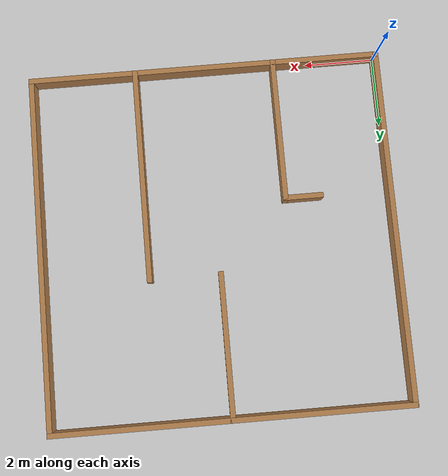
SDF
<sdf version="1.7">
 <world name="default">
  <light name="sun" type="directional">
   <pose>0 0 10 0 -0 0</pose>
   <diffuse>0.8 0.8 0.8 1</diffuse>
   <specular>0.2 0.2 0.2 1</specular>
   <attenuation>
    <range>1000</range>
    <constant>0.9</constant>
    <linear>0.01</linear>
    <quadratic>0.001</quadratic>
   </attenuation>
   <direction>-0.5 0.1 -0.9</direction>
   <spot><inner_angle>0</inner_angle><outer_angle>0</outer_angle><falloff>0</falloff></spot>
  </light>
  <model name="ground_plane">
   <static>1</static>
   <link name="link">
    <collision name="collision">
     <geometry><plane><normal>0 0 1</normal><size>100 100</size></plane></geometry>
     <surface>
      <contact><collide_bitmask>65535</collide_bitmask></contact>
      <friction><ode><mu>100</mu><mu2>50</mu2></ode></friction>
     </surface>
    </collision>
    <visual name="visual">
     <cast_shadows>0</cast_shadows>
     <geometry><plane><normal>0 0 1</normal><size>100 100</size></plane></geometry>
     <material>
      <script><uri>file://media/materials/scripts/gazebo.material</uri><name>Gazebo/Grey</name></script>
     </material>
    </visual>
   </link>
  </model>
  <gravity>0 0 -9.8</gravity>
  <magnetic_field>6e-06 2.3e-05 -4.2e-05</magnetic_field>
  <atmosphere type="adiabatic"/>
  <physics type="ode">
   <max_step_size>0.001</max_step_size>
   <real_time_factor>1</real_time_factor>
   <real_time_update_rate>1000</real_time_update_rate>
  </physics>
  <scene><ambient>0.4 0.4 0.4 1</ambient><background>0.7 0.7 0.7 1</background><shadows>1</shadows></scene>
  <spherical_coordinates>
   <surface_model>EARTH_WGS84</surface_model>
   <latitude_deg>0</latitude_deg>
   <longitude_deg>0</longitude_deg>
   <elevation>0</elevation>
   <heading_deg>0</heading_deg>
  </spherical_coordinates>
  <model name="miletsone3_map">
   <pose>5 5 0 0 -0 0</pose>
   <link name="Wall_0">
    <collision name="Wall_0_Collision">
     <geometry><box><size>10.15 0.15 0.5</size></box></geometry>
     <pose>0 0 0.25 0 -0 0</pose>
    </collision>
    <visual name="Wall_0_Visual">
     <pose>0 0 0.25 0 -0 0</pose>
     <geometry><box><size>10.15 0.15 0.5</size></box></geometry>
     <material>
      <script><uri>file://media/materials/scripts/gazebo.material</uri><name>Gazebo/Wood</name></script>
      <ambient>1 1 1 1</ambient>
     </material>
     <meta><layer>0</layer></meta>
    </visual>
    <pose>-0 -5 0 0 -0 0</pose>
   </link>
   <link name="Wall_11">
    <collision name="Wall_11_Collision">
     <geometry><box><size>10.15 0.15 0.5</size></box></geometry>
     <pose>0 0 0.25 0 -0 0</pose>
    </collision>
    <visual name="Wall_11_Visual">
     <pose>0 0 0.25 0 -0 0</pose>
     <geometry><box><size>10.15 0.15 0.5</size></box></geometry>
     <material>
      <script><uri>file://media/materials/scripts/gazebo.material</uri><name>Gazebo/Wood</name></script>
      <ambient>1 1 1 1</ambient>
     </material>
     <meta><layer>0</layer></meta>
    </visual>
    <pose>-0 5 0 0 -0 0</pose>
   </link>
   <link name="Wall_13">
    <collision name="Wall_13_Collision">
     <geometry><box><size>4.15 0.15 0.5</size></box></geometry>
     <pose>0 0 0.25 0 -0 0</pose>
    </collision>
    <visual name="Wall_13_Visual">
     <pose>0 0 0.25 0 -0 0</pose>
     <geometry><box><size>4.15 0.15 0.5</size></box></geometry>
     <material>
      <script><uri>file://media/materials/scripts/gazebo.material</uri><name>Gazebo/Wood</name></script>
      <ambient>1 1 1 1</ambient>
     </material>
     <meta><layer>0</layer></meta>
    </visual>
    <pose>-2 -3 0 0 -0 1.5708</pose>
   </link>
   <link name="Wall_17">
    <collision name="Wall_17_Collision">
     <geometry><box><size>4.15 0.15 0.5</size></box></geometry>
     <pose>0 0 0.25 0 -0 0</pose>
    </collision>
    <visual name="Wall_17_Visual">
     <pose>0 0 0.25 0 -0 0</pose>
     <geometry><box><size>4.15 0.15 0.5</size></box></geometry>
     <material>
      <script><uri>file://media/materials/scripts/gazebo.material</uri><name>Gazebo/Wood</name></script>
      <ambient>1 1 1 1</ambient>
     </material>
     <meta><layer>0</layer></meta>
    </visual>
    <pose>-0 3 0 0 -0 -1.5708</pose>
   </link>
   <link name="Wall_19">
    <collision name="Wall_19_Collision">
     <geometry><box><size>1.15 0.15 0.5</size></box></geometry>
     <pose>0 0 0.25 0 -0 0</pose>
    </collision>
    <visual name="Wall_19_Visual">
     <pose>0 0 0.25 0 -0 0</pose>
     <geometry><box><size>1.15 0.15 0.5</size></box></geometry>
     <material>
      <script><uri>file://media/materials/scripts/gazebo.material</uri><name>Gazebo/Wood</name></script>
      <ambient>1 1 1 1</ambient>
     </material>
     <meta><layer>0</layer></meta>
    </visual>
    <pose>-2.5 -1 0 0 -0 3.14159</pose>
   </link>
   <link name="Wall_2">
    <collision name="Wall_2_Collision">
     <geometry><box><size>10.15 0.15 0.5</size></box></geometry>
     <pose>0 0 0.25 0 -0 0</pose>
    </collision>
    <visual name="Wall_2_Visual">
     <pose>0 0 0.25 0 -0 0</pose>
     <geometry><box><size>10.15 0.15 0.5</size></box></geometry>
     <material>
      <script><uri>file://media/materials/scripts/gazebo.material</uri><name>Gazebo/Wood</name></script>
      <ambient>1 1 1 1</ambient>
     </material>
     <meta><layer>0</layer></meta>
    </visual>
    <pose>-5 -0 0 0 -0 1.5708</pose>
   </link>
   <link name="Wall_21">
    <collision name="Wall_21_Collision">
     <geometry><box><size>6.15 0.15 0.5</size></box></geometry>
     <pose>0 0 0.25 0 -0 0</pose>
    </collision>
    <visual name="Wall_21_Visual">
     <pose>0 0 0.25 0 -0 0</pose>
     <geometry><box><size>6.15 0.15 0.5</size></box></geometry>
     <material>
      <script><uri>file://media/materials/scripts/gazebo.material</uri><name>Gazebo/Wood</name></script>
      <ambient>1 1 1 1</ambient>
     </material>
     <meta><layer>0</layer></meta>
    </visual>
    <pose>2 -2 0 0 -0 1.5708</pose>
   </link>
   <link name="Wall_8">
    <collision name="Wall_8_Collision">
     <geometry><box><size>10.15 0.15 0.5</size></box></geometry>
     <pose>0 0 0.25 0 -0 0</pose>
    </collision>
    <visual name="Wall_8_Visual">
     <pose>0 0 0.25 0 -0 0</pose>
     <geometry><box><size>10.15 0.15 0.5</size></box></geometry>
     <material>
      <script><uri>file://media/materials/scripts/gazebo.material</uri><name>Gazebo/Wood</name></script>
      <ambient>1 1 1 1</ambient>
     </material>
     <meta><layer>0</layer></meta>
    </visual>
    <pose>5 -0 0 0 -0 1.5708</pose>
   </link>
   <static>1</static>
  </model>
 </world>
</sdf>
